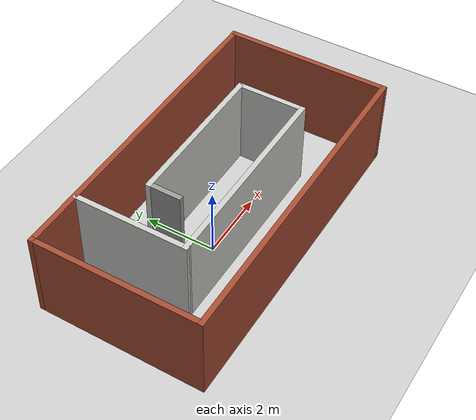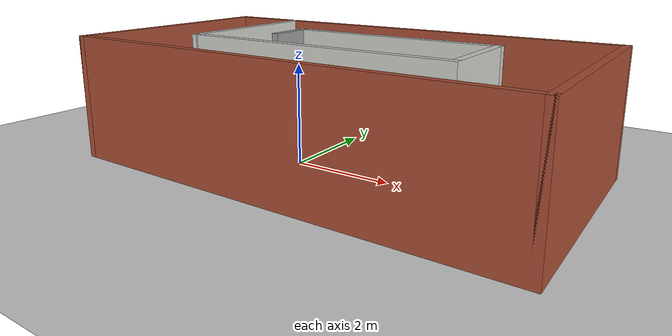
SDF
<sdf version="1.7">
 <world name="default">
  <light name="sun" type="directional">
   <pose>0 0 10 0 -0 0</pose>
   <diffuse>0.8 0.8 0.8 1</diffuse>
   <specular>0.2 0.2 0.2 1</specular>
   <attenuation>
    <range>1000</range>
    <constant>0.9</constant>
    <linear>0.01</linear>
    <quadratic>0.001</quadratic>
   </attenuation>
   <direction>-0.5 0.1 -0.9</direction>
   <spot><inner_angle>0</inner_angle><outer_angle>0</outer_angle><falloff>0</falloff></spot>
  </light>
  <model name="ground_plane">
   <static>1</static>
   <link name="link">
    <collision name="collision">
     <geometry><plane><normal>0 0 1</normal><size>100 100</size></plane></geometry>
     <surface>
      <contact><collide_bitmask>65535</collide_bitmask></contact>
      <friction><ode><mu>100</mu><mu2>50</mu2></ode></friction>
     </surface>
    </collision>
    <visual name="visual">
     <cast_shadows>0</cast_shadows>
     <geometry><plane><normal>0 0 1</normal><size>100 100</size></plane></geometry>
     <material>
      <script><uri>file://media/materials/scripts/gazebo.material</uri><name>Gazebo/Grey</name></script>
     </material>
    </visual>
   </link>
  </model>
  <gravity>0 0 -9.8</gravity>
  <magnetic_field>6e-06 2.3e-05 -4.2e-05</magnetic_field>
  <atmosphere type="adiabatic"/>
  <physics type="ode">
   <max_step_size>0.001</max_step_size>
   <real_time_factor>1</real_time_factor>
   <real_time_update_rate>1000</real_time_update_rate>
  </physics>
  <scene><ambient>0.4 0.4 0.4 1</ambient><background>0.7 0.7 0.7 1</background><shadows>1</shadows></scene>
  <spherical_coordinates>
   <surface_model>EARTH_WGS84</surface_model>
   <latitude_deg>0</latitude_deg>
   <longitude_deg>0</longitude_deg>
   <elevation>0</elevation>
   <heading_deg>0</heading_deg>
  </spherical_coordinates>
  <model name="sixth">
   <pose>0.79 0.25 0 0 -0 0</pose>
   <link name="Wall_1">
    <collision name="Wall_1_Collision">
     <geometry><box><size>4.75 0.15 2.5</size></box></geometry>
     <pose>0 0 1.25 0 -0 0</pose>
    </collision>
    <visual name="Wall_1_Visual">
     <pose>0 0 1.25 0 -0 0</pose>
     <geometry><box><size>4.75 0.15 2.5</size></box></geometry>
     <material>
      <script><uri>file://media/materials/scripts/gazebo.material</uri><name>Gazebo/Bricks</name></script>
      <ambient>1 1 1 1</ambient>
     </material>
     <meta><layer>0</layer></meta>
    </visual>
    <pose>-4.55 0 0 0 -0 -1.5708</pose>
   </link>
   <link name="Wall_10">
    <collision name="Wall_10_Collision">
     <geometry><box><size>1 0.15 2.5</size></box></geometry>
     <pose>0 0 1.25 0 -0 0</pose>
    </collision>
    <visual name="Wall_10_Visual">
     <pose>0 0 1.25 0 -0 0</pose>
     <geometry><box><size>1 0.15 2.5</size></box></geometry>
     <material>
      <script><uri>file://media/materials/scripts/gazebo.material</uri><name>Gazebo/Grey</name></script>
      <ambient>1 1 1 1</ambient>
     </material>
     <meta><layer>0</layer></meta>
    </visual>
    <pose>-1.66 0.575 0 0 -0 -1.5708</pose>
   </link>
   <link name="Wall_2">
    <collision name="Wall_2_Collision">
     <geometry><box><size>9.25 0.15 2.5</size></box></geometry>
     <pose>0 0 1.25 0 -0 0</pose>
    </collision>
    <visual name="Wall_2_Visual">
     <pose>0 0 1.25 0 -0 0</pose>
     <geometry><box><size>9.25 0.15 2.5</size></box></geometry>
     <material>
      <script><uri>file://media/materials/scripts/gazebo.material</uri><name>Gazebo/Bricks</name></script>
      <ambient>1 1 1 1</ambient>
     </material>
     <meta><layer>0</layer></meta>
    </visual>
    <pose>-0 -2.3 0 0 -0 0</pose>
   </link>
   <link name="Wall_3">
    <collision name="Wall_3_Collision">
     <geometry><box><size>4.75 0.15 2.5</size></box></geometry>
     <pose>0 0 1.25 0 -0 0</pose>
    </collision>
    <visual name="Wall_3_Visual">
     <pose>0 0 1.25 0 -0 0</pose>
     <geometry><box><size>4.75 0.15 2.5</size></box></geometry>
     <material>
      <script><uri>file://media/materials/scripts/gazebo.material</uri><name>Gazebo/Bricks</name></script>
      <ambient>1 1 1 1</ambient>
     </material>
     <meta><layer>0</layer></meta>
    </visual>
    <pose>4.55 0 0 0 -0 1.5708</pose>
   </link>
   <link name="Wall_4">
    <collision name="Wall_4_Collision">
     <geometry><box><size>9.25 0.15 2.5</size></box></geometry>
     <pose>0 0 1.25 0 -0 0</pose>
    </collision>
    <visual name="Wall_4_Visual">
     <pose>0 0 1.25 0 -0 0</pose>
     <geometry><box><size>9.25 0.15 2.5</size></box></geometry>
     <material>
      <script><uri>file://media/materials/scripts/gazebo.material</uri><name>Gazebo/Bricks</name></script>
      <ambient>1 1 1 1</ambient>
     </material>
     <meta><layer>0</layer></meta>
    </visual>
    <pose>-0 2.3 0 0 -0 3.14159</pose>
   </link>
   <link name="Wall_6">
    <collision name="Wall_6_Collision">
     <geometry><box><size>3.25 0.15 2.5</size></box></geometry>
     <pose>0 0 1.25 0 -0 0</pose>
    </collision>
    <visual name="Wall_6_Visual">
     <pose>0 0 1.25 0 -0 0</pose>
     <geometry><box><size>3.25 0.15 2.5</size></box></geometry>
     <material>
      <script><uri>file://media/materials/scripts/gazebo.material</uri><name>Gazebo/CeilingTiled</name></script>
      <ambient>1 1 1 1</ambient>
     </material>
     <meta><layer>0</layer></meta>
    </visual>
    <pose>-2.91 0.7 0 0 -0 -1.5708</pose>
   </link>
   <link name="Wall_7">
    <collision name="Wall_7_Collision">
     <geometry><box><size>5.75 0.15 2.5</size></box></geometry>
     <pose>0 0 1.25 0 -0 0</pose>
    </collision>
    <visual name="Wall_7_Visual">
     <pose>0 0 1.25 0 -0 0</pose>
     <geometry><box><size>5.75 0.15 2.5</size></box></geometry>
     <material>
      <script><uri>file://media/materials/scripts/gazebo.material</uri><name>Gazebo/CeilingTiled</name></script>
      <ambient>1 1 1 1</ambient>
     </material>
     <meta><layer>0</layer></meta>
    </visual>
    <pose>-0.11 -0.85 0 0 -0 0</pose>
   </link>
   <link name="Wall_8">
    <collision name="Wall_8_Collision">
     <geometry><box><size>2 0.15 2.5</size></box></geometry>
     <pose>0 0 1.25 0 -0 0</pose>
    </collision>
    <visual name="Wall_8_Visual">
     <pose>0 0 1.25 0 -0 0</pose>
     <geometry><box><size>2 0.15 2.5</size></box></geometry>
     <material>
      <script><uri>file://media/materials/scripts/gazebo.material</uri><name>Gazebo/CeilingTiled</name></script>
      <ambient>1 1 1 1</ambient>
     </material>
     <meta><layer>0</layer></meta>
    </visual>
    <pose>2.69 0.075 0 0 -0 1.5708</pose>
   </link>
   <link name="Wall_9">
    <collision name="Wall_9_Collision">
     <geometry><box><size>4.5 0.15 2.5</size></box></geometry>
     <pose>0 0 1.25 0 -0 0</pose>
    </collision>
    <visual name="Wall_9_Visual">
     <pose>0 0 1.25 0 -0 0</pose>
     <geometry><box><size>4.5 0.15 2.5</size></box></geometry>
     <material>
      <script><uri>file://media/materials/scripts/gazebo.material</uri><name>Gazebo/CeilingTiled</name></script>
      <ambient>1 1 1 1</ambient>
     </material>
     <meta><layer>0</layer></meta>
    </visual>
    <pose>0.515 1 0 0 -0 3.14159</pose>
   </link>
   <static>1</static>
  </model>
 </world>
</sdf>
